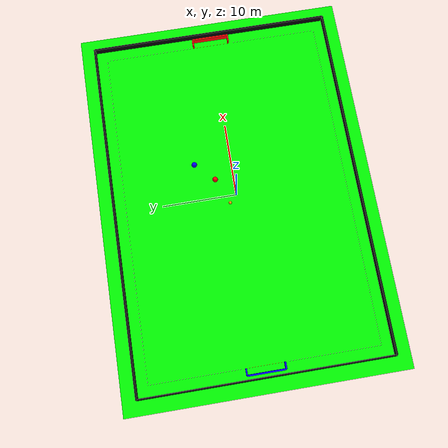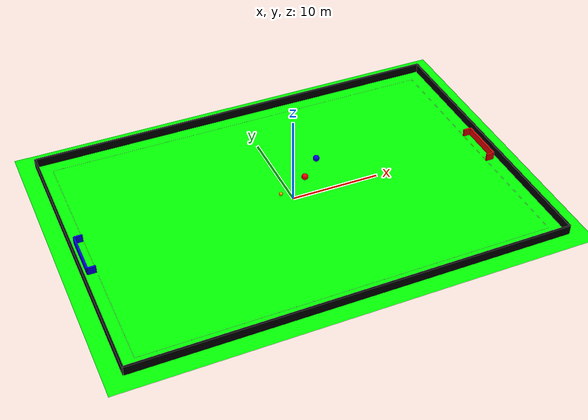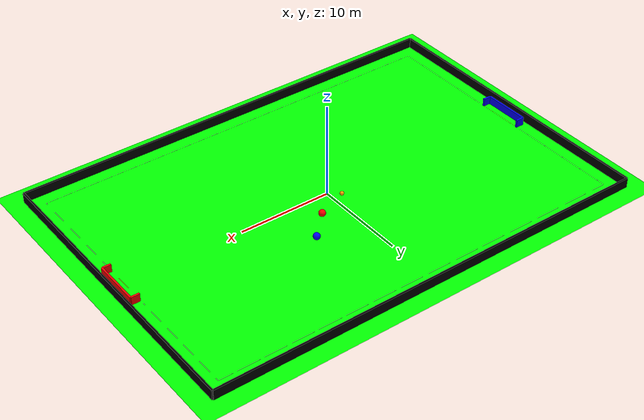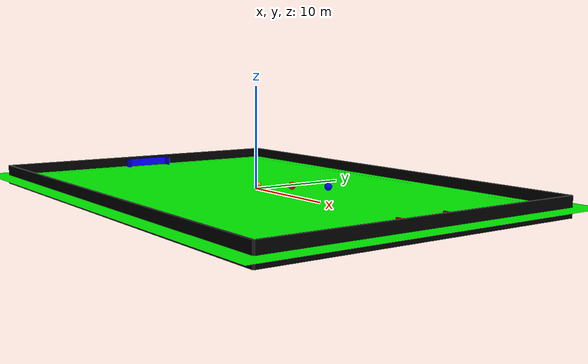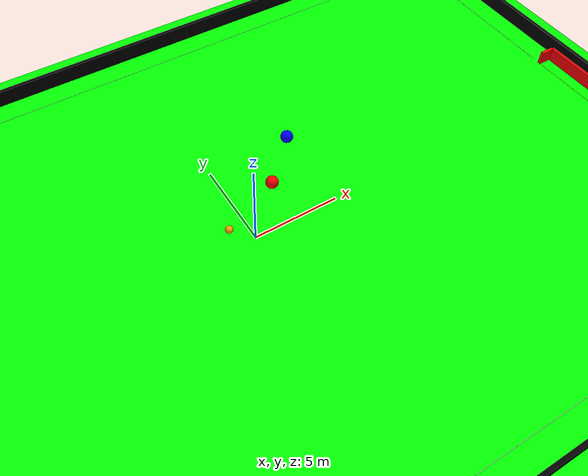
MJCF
<mujoco>

	<default>
		<geom contype="1" conaffinity="1" condim="3" friction=".5 .02 .02" />
	</default>

	<worldbody>

		<body name="arena">

			<geom name="field" type="plane" size="26 18.5 0.1" pos="0 0 0" rgba="0 1 0 1" />

			<geom name="boundary_S" type="box" size="24 0.1 1" pos="0 16.5 0" rgba="0 0 0 1" mass="1000" />
			<geom name="boundary_N" type="box" size="24 0.1 1" pos="0 -16.5 0" rgba="0 0 0 1" mass="1000" />
			<geom name="boundary_W" type="box" size="16.5 0.1 1" pos="24 0 0" rgba="0 0 0 1" euler="0 0 90" mass="1000" />
			<geom name="boundary_E" type="box" size="16.5 0.1 1" pos="-24 0 0" rgba="0 0 0 1" euler="0 0 90" mass="1000" />

			<geom name="goalE_W" type="box" size="2.5 0.1 0.8" pos="23.4 0 0" rgba="1 0 0 1" euler="0 0 90" />
			<geom name="goalE_S" type="box" size="0.45 0.1 0.8" pos="22.95 2.5 0" rgba="1 0 0 1" />
			<geom name="goalE_N" type="box" size="0.45 0.1 0.8" pos="22.95 -2.5 0" rgba="1 0 0 1" />

			<geom name="goalW_E" type="box" size="2.5 0.1 0.8" pos="-23.4 0 0" rgba="0 0 1 1" euler="0 0 90" />
			<geom name="goalW_S" type="box" size="0.45 0.1 0.8" pos="-22.95 2.5 0" rgba="0 0 1 1" />
			<geom name="goalW_N" type="box" size="0.45 0.1 0.8" pos="-22.95 -2.5 0" rgba="0 0 1 1" />

			<geom name="line_S" type="box" size="0.001 22.5 0.01" pos="0 15 0" rgba="255 255 255 1" euler="90 0 90" />
			<geom name="line_N" type="box" size="0.001 22.5 0.01" pos="0 -15 0" rgba="255 255 255 1" euler="90 0 90" />
			<geom name="line_goalE" type="box" size="0.001 2.5 0.01" pos="-22.5 0 0" rgba="255 255 0 1" euler="0 90 0" />
			<geom name="line_goalE_N" type="box" size="0.001 6 0.01" pos="-22.5 -9 0" rgba="255 255 255 1" euler="0 90 0" />
			<geom name="line_goalE_S" type="box" size="0.001 6 0.01" pos="-22.5 9 0" rgba="255 255 255 1" euler="0 90 0" />
			<geom name="line_goalW" type="box" size="0.001 2.5 0.01" pos="22.5 0 0" rgba="255 255 0 1" euler="0 90 0" />
			<geom name="line_goalW_N" type="box" size="0.001 6 0.01" pos="22.5 -9 0" rgba="255 255 255 1" euler="0 90 0" />
			<geom name="line_goalW_S" type="box" size="0.001 6 0.01" pos="22.5 9 0" rgba="255 255 255 1" euler="0 90 0" />

		</body>

		<body name="ball" pos="-1 1 0.215">
			<geom name="ball" type="sphere" size="0.215" rgba="1 0.647 0 1" mass="2.77" friction="1" />
			<joint name="ball" type="free" />
		</body>

		<body name="home_player_1" pos="5 5 0.365">
			<geom name="home_player_1" type="sphere" size="0.365" rgba="0 0 1 1" mass="200" density="100" />
			<joint name="home_player_1" type="free" />
		</body>

		<!-- Obstacles -->
		<body name="away_player_1" pos="2.5 2.5 0.365">
			<geom name="away_player_1" type="sphere" size="0.365" rgba="1 0 0 1" mass="200" density="100" />
			<joint name="away_player_1" type="free" />
		</body>
		<body name="away_player_2" pos="2.5 2.5 0.365">
			<geom name="away_player_2" type="sphere" size="0.365" rgba="1 0 0 1" mass="200" density="100" />
			<joint name="away_player_2" type="free" />
		</body>
		<body name="away_player_3" pos="2.5 2.5 0.365">
			<geom name="away_player_3" type="sphere" size="0.365" rgba="1 0 0 1" mass="200" density="100" />
			<joint name="away_player_3" type="free" />
		</body>

	</worldbody>
</mujoco>
